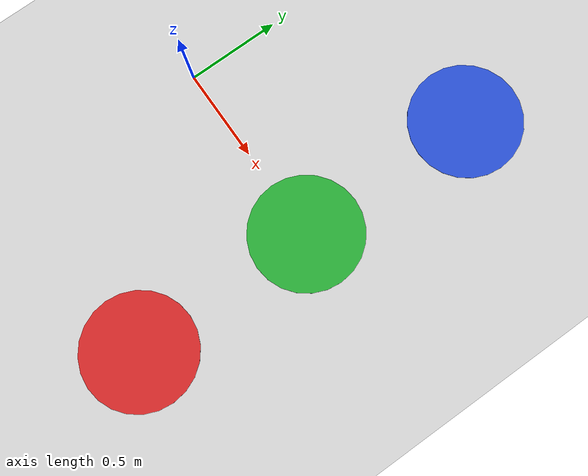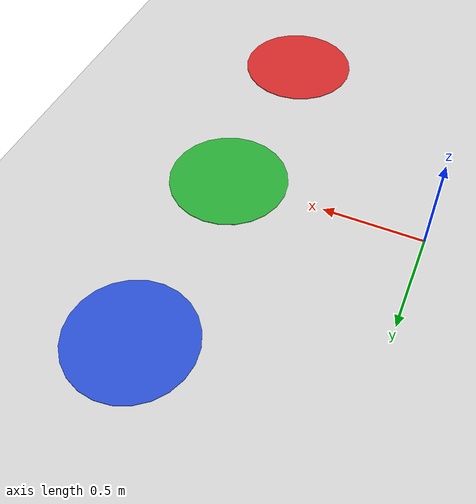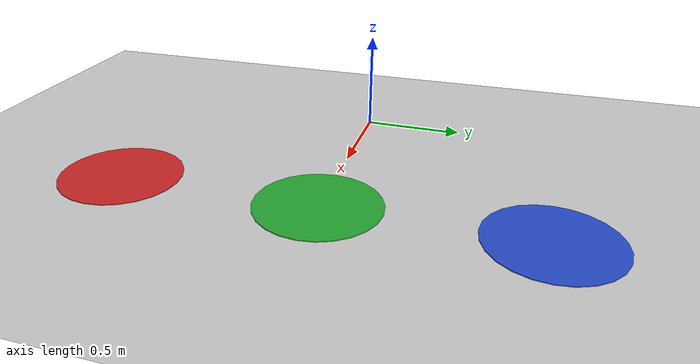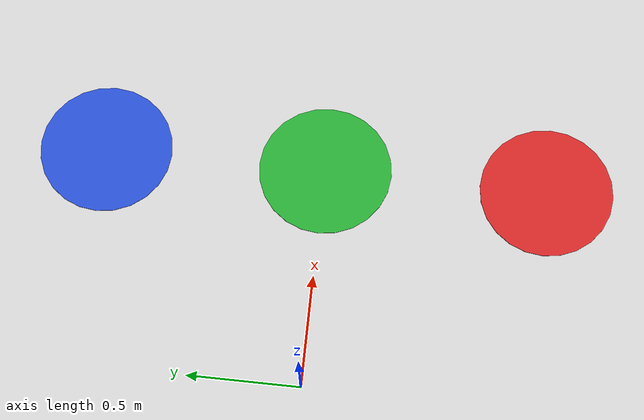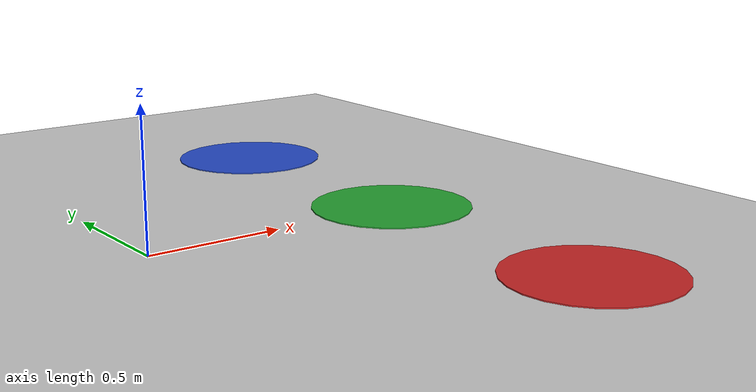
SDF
<?xml version='1.0'?>
<sdf version='1.7'>
  <world name='default'>
    <light name='sun' type='directional'>
      <cast_shadows>1</cast_shadows>
      <pose>0 0 10 0 -0 0</pose>
      <diffuse>0.8 0.8 0.8 1</diffuse>
      <specular>0.2 0.2 0.2 1</specular>
      <attenuation>
        <range>1000</range>
        <constant>0.9</constant>
        <linear>0.01</linear>
        <quadratic>0.001</quadratic>
      </attenuation>
      <direction>-0.5 0.1 -0.9</direction>
      <spot>
        <inner_angle>0</inner_angle>
        <outer_angle>0</outer_angle>
        <falloff>0</falloff>
      </spot>
    </light>
    <model name='ground_plane'>
      <static>1</static>
      <link name='link'>
        <collision name='collision'>
          <geometry>
            <plane>
              <normal>0 0 1</normal>
              <size>20 20</size>
            </plane>
          </geometry>
          <surface>
            <friction>
              <ode>
                <mu>100</mu>
                <mu2>50</mu2>
              </ode>
              <torsional>
                <ode/>
              </torsional>
            </friction>
            <contact>
              <ode/>
            </contact>
            <bounce/>
          </surface>
          <max_contacts>100</max_contacts>
        </collision>
        <visual name='visual'>
          <cast_shadows>0</cast_shadows>
          <geometry>
            <plane>
              <normal>0 0 1</normal>
              <size>20 20</size>
            </plane>
          </geometry>
          <material>
            <script>
              <uri>file://media/materials/scripts/gazebo.material</uri>
              <name>Gazebo/Grey</name>
            </script>
          </material>
        </visual>
        <self_collide>0</self_collide>
        <enable_wind>0</enable_wind>
        <kinematic>0</kinematic>
      </link>
    </model>
    <gravity>0 0 -9.8</gravity>
    <magnetic_field>6e-06 2.3e-05 -4.2e-05</magnetic_field>
    <atmosphere type='adiabatic'/>
    <physics type='ode'>
      <max_step_size>0.001</max_step_size>
      <real_time_factor>1</real_time_factor>
      <real_time_update_rate>1000</real_time_update_rate>
    </physics>
    <scene>
      <ambient>0.4 0.4 0.4 1</ambient>
      <background>0.7 0.7 0.7 1</background>
      <shadows>1</shadows>
    </scene>
    <wind/>
    <spherical_coordinates>
      <surface_model>EARTH_WGS84</surface_model>
      <latitude_deg>0</latitude_deg>
      <longitude_deg>0</longitude_deg>
      <elevation>0</elevation>
      <heading_deg>0</heading_deg>
    </spherical_coordinates>
    <model name='red_target'>
      <static>1</static>
      <pose>1.000 -1.000 0.002 0 0 0</pose>
      <link name='link'>
        <collision name='collision'>
          <geometry>
            <cylinder>
              <radius>0.3</radius>
              <length>0.004</length>
            </cylinder>
          </geometry>
        </collision>
        <visual name='visual'>
          <geometry>
            <cylinder>
              <radius>0.3</radius>
              <length>0.004</length>
            </cylinder>
          </geometry>
          <material>
            <script>
              <uri>file://media/materials/scripts/gazebo.material</uri>
              <name>Gazebo/Red</name>
            </script>
          </material>
        </visual>
      </link>
    </model>
    <model name='green_target'>
      <static>1</static>
      <pose>1.000 0.000 0.002 0 0 0</pose>
      <link name='link'>
        <collision name='collision'>
          <geometry>
            <cylinder>
              <radius>0.3</radius>
              <length>0.004</length>
            </cylinder>
          </geometry>
        </collision>
        <visual name='visual'>
          <geometry>
            <cylinder>
              <radius>0.3</radius>
              <length>0.004</length>
            </cylinder>
          </geometry>
          <material>
            <script>
              <uri>file://media/materials/scripts/gazebo.material</uri>
              <name>Gazebo/Green</name>
            </script>
          </material>
        </visual>
      </link>
    </model>
    <model name='blue_target'>
      <static>1</static>
      <pose>1.000 1.000 0.002 0 0 0</pose>
      <link name='link'>
        <collision name='collision'>
          <geometry>
            <cylinder>
              <radius>0.3</radius>
              <length>0.004</length>
            </cylinder>
          </geometry>
        </collision>
        <visual name='visual'>
          <geometry>
            <cylinder>
              <radius>0.3</radius>
              <length>0.004</length>
            </cylinder>
          </geometry>
          <material>
            <script>
              <uri>file://media/materials/scripts/gazebo.material</uri>
              <name>Gazebo/Blue</name>
            </script>
          </material>
        </visual>
      </link>
    </model>
  </world>
</sdf>
